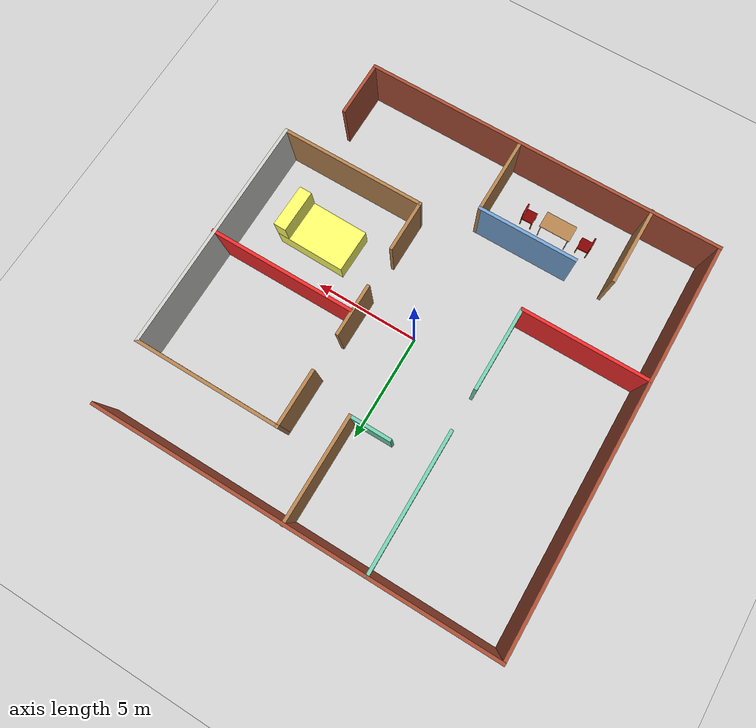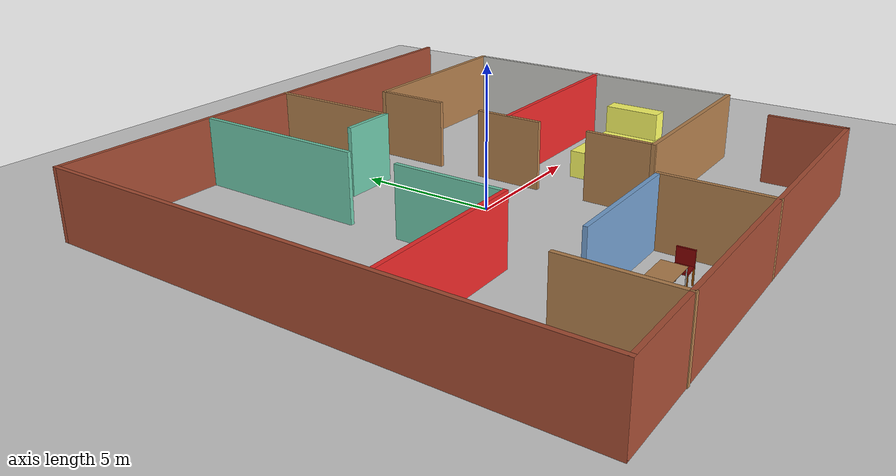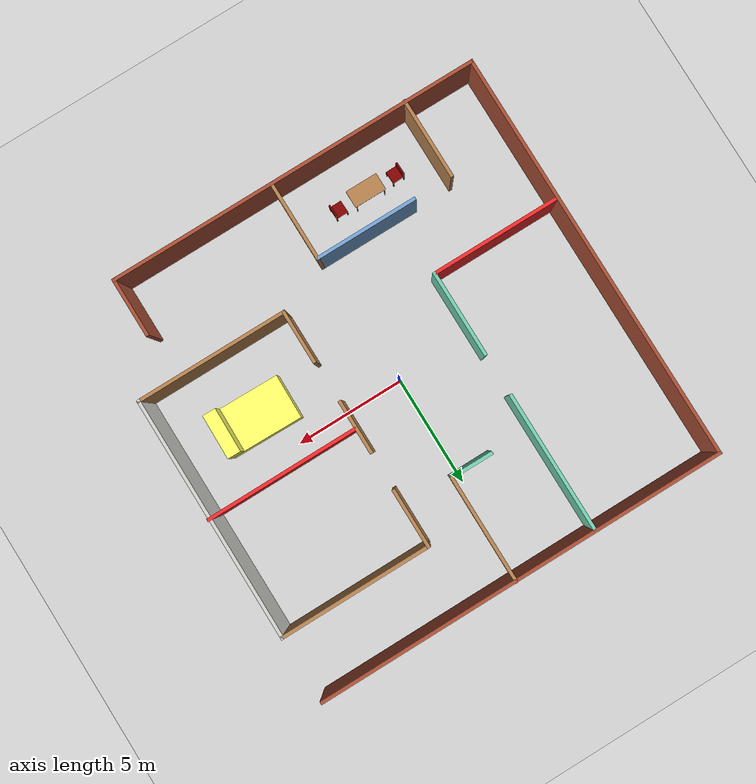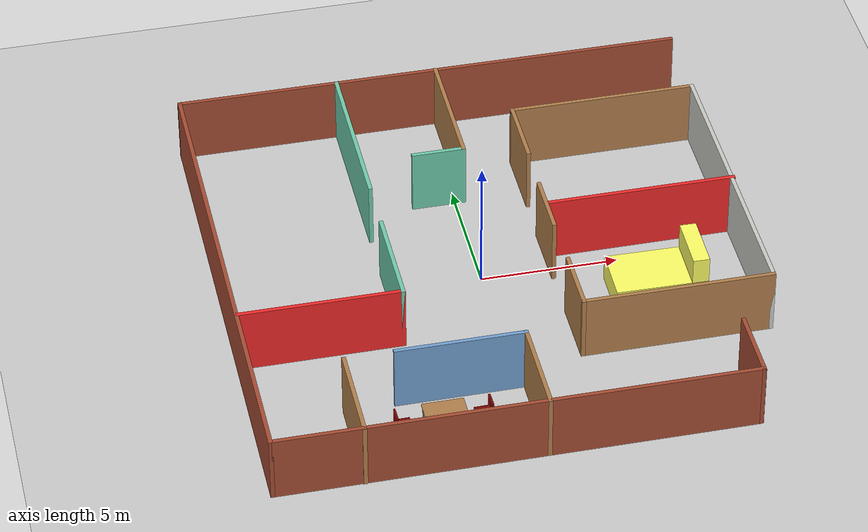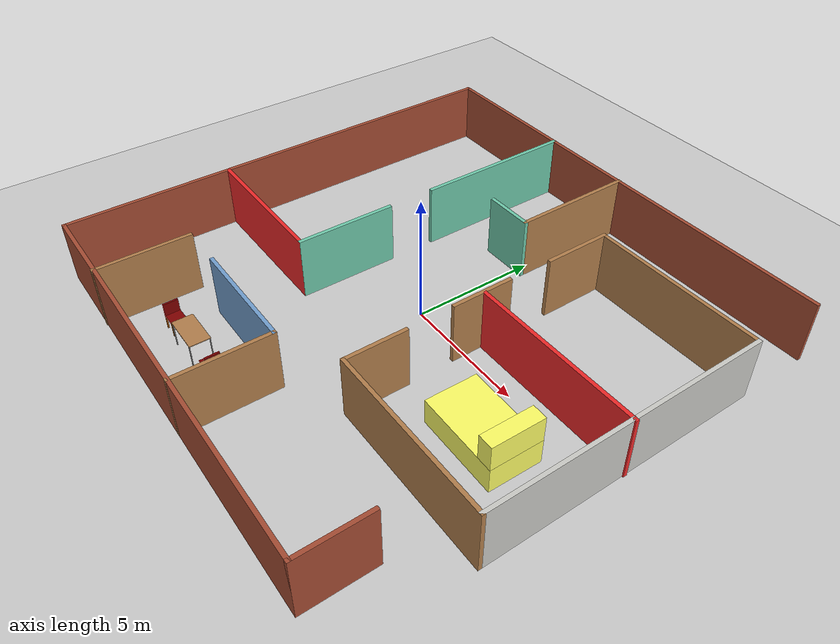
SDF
<sdf version="1.6">
 <world name="default">
  <model name="ground_plane">
   <static>1</static>
   <link name="link">
    <collision name="collision">
     <geometry><plane><normal>0 0 1</normal><size>100 100</size></plane></geometry>
     <surface>
      <contact><collide_bitmask>65535</collide_bitmask></contact>
      <friction><ode><mu>100</mu><mu2>50</mu2></ode></friction>
     </surface>
    </collision>
    <visual name="visual">
     <cast_shadows>0</cast_shadows>
     <geometry><plane><normal>0 0 1</normal><size>100 100</size></plane></geometry>
     <material>
      <script><uri>file://media/materials/scripts/gazebo.material</uri><name>Gazebo/Grey</name></script>
     </material>
    </visual>
   </link>
  </model>
  <model name="building_submit2">
   <pose>0.05273 -0.090017 0 0 -0 0</pose>
   <link name="Wall_13">
    <collision name="Wall_13_Collision">
     <geometry><box><size>19 0.15 2.5</size></box></geometry>
     <pose>0 0 1.25 0 -0 0</pose>
    </collision>
    <visual name="Wall_13_Visual">
     <pose>0 0 1.25 0 -0 0</pose>
     <geometry><box><size>19 0.15 2.5</size></box></geometry>
     <material>
      <script><uri>file://media/materials/scripts/gazebo.material</uri><name>Gazebo/Bricks</name></script>
      <ambient>1 1 1 1</ambient>
     </material>
     <meta><layer>0</layer></meta>
    </visual>
    <pose>-9.41583 0.005472 0 0 -0 -1.5708</pose>
   </link>
   <link name="Wall_15">
    <collision name="Wall_15_Collision">
     <geometry><box><size>18.9075 0.15 2.5</size></box></geometry>
     <pose>0 0 1.25 0 -0 0</pose>
    </collision>
    <visual name="Wall_15_Visual">
     <pose>0 0 1.25 0 -0 0</pose>
     <geometry><box><size>18.9075 0.15 2.5</size></box></geometry>
     <material>
      <script><uri>file://media/materials/scripts/gazebo.material</uri><name>Gazebo/Bricks</name></script>
      <ambient>1 1 1 1</ambient>
     </material>
     <meta><layer>0</layer></meta>
    </visual>
    <pose>-0.037088 9.43047 0 0 -0 0</pose>
   </link>
   <link name="Wall_21">
    <collision name="Wall_21_Collision">
     <geometry><box><size>7 0.15 2.5</size></box></geometry>
     <pose>0 0 1.25 0 -0 0</pose>
    </collision>
    <visual name="Wall_21_Visual">
     <pose>0 0 1.25 0 -0 0</pose>
     <geometry><box><size>7 0.15 2.5</size></box></geometry>
     <material>
      <script><uri>file://media/materials/scripts/gazebo.material</uri><name>Gazebo/Wood</name></script>
      <ambient>1 1 1 1</ambient>
     </material>
     <meta><layer>0</layer></meta>
    </visual>
    <pose>5.94123 6.42349 0 0 -0 3.14159</pose>
   </link>
   <link name="Wall_23">
    <collision name="Wall_23_Collision">
     <geometry><box><size>7 0.15 2.5</size></box></geometry>
     <pose>0 0 1.25 0 -0 0</pose>
    </collision>
    <visual name="Wall_23_Visual">
     <pose>0 0 1.25 0 -0 0</pose>
     <geometry><box><size>7 0.15 2.5</size></box></geometry>
     <material>
      <script><uri>file://media/materials/scripts/gazebo.material</uri><name>Gazebo/Wood</name></script>
      <ambient>1 1 1 1</ambient>
     </material>
     <meta><layer>0</layer></meta>
    </visual>
    <pose>5.94123 -4.67651 0 0 -0 0</pose>
   </link>
   <link name="Wall_25">
    <collision name="Wall_25_Collision">
     <geometry><box><size>7 0.15 2.5</size></box></geometry>
     <pose>0 0 1.25 0 -0 0</pose>
    </collision>
    <visual name="Wall_25_Visual">
     <pose>0 0 1.25 0 -0 0</pose>
     <geometry><box><size>7 0.15 2.5</size></box></geometry>
     <material>
      <script><uri>file://media/materials/scripts/gazebo.material</uri><name>Gazebo/Grey</name></script>
      <ambient>0.937255 0.160784 0.160784 1</ambient>
     </material>
     <meta><layer>0</layer></meta>
    </visual>
    <pose>5.99083 0.872147 0 0 -0 0</pose>
   </link>
   <link name="Wall_27">
    <collision name="Wall_27_Collision">
     <geometry><box><size>11.25 0.15 2.5</size></box></geometry>
     <pose>0 0 1.25 0 -0 0</pose>
    </collision>
    <visual name="Wall_27_Visual">
     <pose>0 0 1.25 0 -0 0</pose>
     <geometry><box><size>11.25 0.15 2.5</size></box></geometry>
     <material>
      <script><uri>file://media/materials/scripts/gazebo.material</uri><name>Gazebo/CeilingTiled</name></script>
      <ambient>1 1 1 1</ambient>
     </material>
     <meta><layer>0</layer></meta>
    </visual>
    <pose>9.36623 0.873493 0 0 -0 -1.5708</pose>
   </link>
   <link name="Wall_36">
    <collision name="Wall_36_Collision">
     <geometry><box><size>17.25 0.15 2.5</size></box></geometry>
     <pose>0 0 1.25 0 -0 0</pose>
    </collision>
    <visual name="Wall_36_Visual">
     <pose>0 0 1.25 0 -0 0</pose>
     <geometry><box><size>17.25 0.15 2.5</size></box></geometry>
     <material>
      <script><uri>file://media/materials/scripts/gazebo.material</uri><name>Gazebo/Bricks</name></script>
      <ambient>1 1 1 1</ambient>
     </material>
     <meta><layer>0</layer></meta>
    </visual>
    <pose>-0.865827 -9.41953 0 0 -0 0</pose>
   </link>
   <link name="Wall_37">
    <collision name="Wall_37_Collision">
     <geometry><box><size>2.75 0.15 2.5</size></box></geometry>
     <pose>0 0 1.25 0 -0 0</pose>
    </collision>
    <visual name="Wall_37_Visual">
     <pose>0 0 1.25 0 -0 0</pose>
     <geometry><box><size>2.75 0.15 2.5</size></box></geometry>
     <material>
      <script><uri>file://media/materials/scripts/gazebo.material</uri><name>Gazebo/Bricks</name></script>
      <ambient>1 1 1 1</ambient>
     </material>
     <meta><layer>0</layer></meta>
    </visual>
    <pose>7.68417 -8.11953 0 0 -0 1.5708</pose>
   </link>
   <link name="Wall_39">
    <collision name="Wall_39_Collision">
     <geometry><box><size>2.75 0.15 2.5</size></box></geometry>
     <pose>0 0 1.25 0 -0 0</pose>
    </collision>
    <visual name="Wall_39_Visual">
     <pose>0 0 1.25 0 -0 0</pose>
     <geometry><box><size>2.75 0.15 2.5</size></box></geometry>
     <material>
      <script><uri>file://media/materials/scripts/gazebo.material</uri><name>Gazebo/Wood</name></script>
      <ambient>1 1 1 1</ambient>
     </material>
     <meta><layer>0</layer></meta>
    </visual>
    <pose>2.51623 5.12349 0 0 -0 -1.5708</pose>
   </link>
   <link name="Wall_41">
    <collision name="Wall_41_Collision">
     <geometry><box><size>2.5 0.15 2.5</size></box></geometry>
     <pose>0 0 1.25 0 -0 0</pose>
    </collision>
    <visual name="Wall_41_Visual">
     <pose>0 0 1.25 0 -0 0</pose>
     <geometry><box><size>2.5 0.15 2.5</size></box></geometry>
     <material>
      <script><uri>file://media/materials/scripts/gazebo.material</uri><name>Gazebo/Wood</name></script>
      <ambient>1 1 1 1</ambient>
     </material>
     <meta><layer>0</layer></meta>
    </visual>
    <pose>2.4831 0.814696 0 0 -0 -1.5708</pose>
   </link>
   <link name="Wall_43">
    <collision name="Wall_43_Collision">
     <geometry><box><size>2.5 0.15 2.5</size></box></geometry>
     <pose>0 0 1.25 0 -0 0</pose>
    </collision>
    <visual name="Wall_43_Visual">
     <pose>0 0 1.25 0 -0 0</pose>
     <geometry><box><size>2.5 0.15 2.5</size></box></geometry>
     <material>
      <script><uri>file://media/materials/scripts/gazebo.material</uri><name>Gazebo/Wood</name></script>
      <ambient>1 1 1 1</ambient>
     </material>
     <meta><layer>0</layer></meta>
    </visual>
    <pose>2.51623 -3.50151 0 0 -0 1.5708</pose>
   </link>
   <link name="Wall_46">
    <collision name="Wall_46_Collision">
     <geometry><box><size>6 0.15 2.5</size></box></geometry>
     <pose>0 0 1.25 0 -0 0</pose>
    </collision>
    <visual name="Wall_46_Visual">
     <pose>0 0 1.25 0 -0 0</pose>
     <geometry><box><size>6 0.15 2.5</size></box></geometry>
     <material>
      <script><uri>file://media/materials/scripts/gazebo.material</uri><name>Gazebo/Grey</name></script>
      <ambient>0.937255 0.160784 0.160784 1</ambient>
     </material>
     <meta><layer>0</layer></meta>
    </visual>
    <pose>-6.43819 -2.78383 0 0 -0 3.14159</pose>
   </link>
   <link name="Wall_48">
    <collision name="Wall_48_Collision">
     <geometry><box><size>3.75 0.15 2.5</size></box></geometry>
     <pose>0 0 1.25 0 -0 0</pose>
    </collision>
    <visual name="Wall_48_Visual">
     <pose>0 0 1.25 0 -0 0</pose>
     <geometry><box><size>3.75 0.15 2.5</size></box></geometry>
     <material>
      <script><uri>file://media/materials/scripts/gazebo.material</uri><name>Gazebo/Wood</name></script>
      <ambient>1 1 1 1</ambient>
     </material>
     <meta><layer>0</layer></meta>
    </visual>
    <pose>-6.2174 -7.64721 0 0 -0 1.5708</pose>
   </link>
   <link name="Wall_50">
    <collision name="Wall_50_Collision">
     <geometry><box><size>3.75 0.15 2.5</size></box></geometry>
     <pose>0 0 1.25 0 -0 0</pose>
    </collision>
    <visual name="Wall_50_Visual">
     <pose>0 0 1.25 0 -0 0</pose>
     <geometry><box><size>3.75 0.15 2.5</size></box></geometry>
     <material>
      <script><uri>file://media/materials/scripts/gazebo.material</uri><name>Gazebo/Wood</name></script>
      <ambient>1 1 1 1</ambient>
     </material>
     <meta><layer>0</layer></meta>
    </visual>
    <pose>0.195698 -7.62076 0 0 -0 -1.5708</pose>
   </link>
   <link name="Wall_52">
    <collision name="Wall_52_Collision">
     <geometry><box><size>4.75 0.15 2.5</size></box></geometry>
     <pose>0 0 1.25 0 -0 0</pose>
    </collision>
    <visual name="Wall_52_Visual">
     <pose>0 0 1.25 0 -0 0</pose>
     <geometry><box><size>4.75 0.15 2.5</size></box></geometry>
     <material>
      <script><uri>file://media/materials/scripts/gazebo.material</uri><name>Gazebo/Grey</name></script>
      <ambient>0.447059 0.623529 0.811765 1</ambient>
     </material>
     <meta><layer>0</layer></meta>
    </visual>
    <pose>-2.1043 -5.82076 0 0 -0 3.14159</pose>
   </link>
   <link name="Wall_55">
    <collision name="Wall_55_Collision">
     <geometry><box><size>5 0.15 2.5</size></box></geometry>
     <pose>0 0 1.25 0 -0 0</pose>
    </collision>
    <visual name="Wall_55_Visual">
     <pose>0 0 1.25 0 -0 0</pose>
     <geometry><box><size>5 0.15 2.5</size></box></geometry>
     <material>
      <script><uri>file://media/materials/scripts/gazebo.material</uri><name>Gazebo/Wood</name></script>
      <ambient>1 1 1 1</ambient>
     </material>
     <meta><layer>0</layer></meta>
    </visual>
    <pose>0.261068 7.02221 0 0 -0 -1.5708</pose>
   </link>
   <link name="Wall_56">
    <collision name="Wall_56_Collision">
     <geometry><box><size>2 0.15 2.5</size></box></geometry>
     <pose>0 0 1.25 0 -0 0</pose>
    </collision>
    <visual name="Wall_56_Visual">
     <pose>0 0 1.25 0 -0 0</pose>
     <geometry><box><size>2 0.15 2.5</size></box></geometry>
     <material>
      <script><uri>file://media/materials/scripts/gazebo.material</uri><name>Gazebo/Grey</name></script>
      <ambient>0.435294 0.796078 0.67451 1</ambient>
     </material>
     <meta><layer>0</layer></meta>
    </visual>
    <pose>-0.663932 4.59721 0 0 -0 3.14159</pose>
   </link>
   <link name="Wall_58">
    <collision name="Wall_58_Collision">
     <geometry><box><size>6.5 0.15 2.5</size></box></geometry>
     <pose>0 0 1.25 0 -0 0</pose>
    </collision>
    <visual name="Wall_58_Visual">
     <pose>0 0 1.25 0 -0 0</pose>
     <geometry><box><size>6.5 0.15 2.5</size></box></geometry>
     <material>
      <script><uri>file://media/materials/scripts/gazebo.material</uri><name>Gazebo/Grey</name></script>
      <ambient>0.435294 0.796078 0.67451 1</ambient>
     </material>
     <meta><layer>0</layer></meta>
    </visual>
    <pose>-3.51319 6.23718 0 0 -0 -1.5708</pose>
   </link>
   <link name="Wall_60">
    <collision name="Wall_60_Collision">
     <geometry><box><size>4 0.15 2.5</size></box></geometry>
     <pose>0 0 1.25 0 -0 0</pose>
    </collision>
    <visual name="Wall_60_Visual">
     <pose>0 0 1.25 0 -0 0</pose>
     <geometry><box><size>4 0.15 2.5</size></box></geometry>
     <material>
      <script><uri>file://media/materials/scripts/gazebo.material</uri><name>Gazebo/Grey</name></script>
      <ambient>0.435294 0.796078 0.67451 1</ambient>
     </material>
     <meta><layer>0</layer></meta>
    </visual>
    <pose>-3.51319 -0.858835 0 0 -0 1.5708</pose>
   </link>
   <static>1</static>
  </model>
  <model name="chair_7">
   <link name="link_0">
    <inertial>
     <mass>1</mass>
     <inertia>
      <ixx>0.166667</ixx>
      <ixy>0</ixy>
      <ixz>0</ixz>
      <iyy>0.166667</iyy>
      <iyz>0</iyz>
      <izz>0.166667</izz>
     </inertia>
    </inertial>
    <pose>0.000435 0.041667 0.148333 0 -0 0</pose>
    <visual name="visual">
     <geometry><box><size>0.57 0.57 0.07</size></box></geometry>
     <material>
      <lighting>1</lighting>
      <script><uri>file://media/materials/scripts/gazebo.material</uri><name>Gazebo/Grey</name></script>
      <shader type="vertex"><normal_map>__default__</normal_map></shader>
      <ambient>0.502 0 0 1</ambient>
      <diffuse>0.7 0.7 0.7 1</diffuse>
      <specular>0.01 0.01 0.01 1</specular>
      <emissive>0 0 0 1</emissive>
     </material>
    </visual>
    <collision name="collision">
     <geometry><box><size>0.57 0.57 0.07</size></box></geometry>
     <surface>
      <friction>
       <ode><mu>1</mu><mu2>1</mu2><fdir1>0 0 0</fdir1><slip1>0</slip1><slip2>0</slip2></ode>
       <torsional>
        <coefficient>1</coefficient>
        <patch_radius>0</patch_radius>
        <surface_radius>0</surface_radius>
        <use_patch_radius>1</use_patch_radius>
        <ode><slip>0</slip></ode>
       </torsional>
      </friction>
      <bounce><restitution_coefficient>0</restitution_coefficient><threshold>1e+06</threshold></bounce>
      <contact>
       <collide_without_contact>0</collide_without_contact>
       <collide_without_contact_bitmask>1</collide_without_contact_bitmask>
       <collide_bitmask>1</collide_bitmask>
       <ode>
        <soft_cfm>0</soft_cfm>
        <soft_erp>0.2</soft_erp>
        <kp>1e+13</kp>
        <kd>1</kd>
        <max_vel>0.01</max_vel>
        <min_depth>0</min_depth>
       </ode>
       <bullet>
        <split_impulse>1</split_impulse>
        <split_impulse_penetration_threshold>-0.01</split_impulse_penetration_threshold>
        <soft_cfm>0</soft_cfm>
        <soft_erp>0.2</soft_erp>
        <kp>1e+13</kp>
        <kd>1</kd>
       </bullet>
      </contact>
     </surface>
    </collision>
   </link>
   <link name="link_1">
    <inertial>
     <mass>1</mass>
     <inertia>
      <ixx>0.166667</ixx>
      <ixy>0</ixy>
      <ixz>0</ixz>
      <iyy>0.166667</iyy>
      <iyz>0</iyz>
      <izz>0.166667</izz>
     </inertia>
    </inertial>
    <pose>0.000435 -0.208333 0.398333 0 -0 0</pose>
    <visual name="visual">
     <geometry><box><size>0.57 0.07 0.57</size></box></geometry>
     <material>
      <lighting>1</lighting>
      <script><uri>file://media/materials/scripts/gazebo.material</uri><name>Gazebo/Grey</name></script>
      <shader type="vertex"><normal_map>__default__</normal_map></shader>
      <ambient>0.502 0 0 1</ambient>
      <diffuse>0.7 0.7 0.7 1</diffuse>
      <specular>0.01 0.01 0.01 1</specular>
      <emissive>0 0 0 1</emissive>
     </material>
    </visual>
    <collision name="collision">
     <geometry><box><size>0.57 0.07 0.57</size></box></geometry>
     <surface>
      <friction>
       <ode><mu>1</mu><mu2>1</mu2><fdir1>0 0 0</fdir1><slip1>0</slip1><slip2>0</slip2></ode>
       <torsional>
        <coefficient>1</coefficient>
        <patch_radius>0</patch_radius>
        <surface_radius>0</surface_radius>
        <use_patch_radius>1</use_patch_radius>
        <ode><slip>0</slip></ode>
       </torsional>
      </friction>
      <bounce><restitution_coefficient>0</restitution_coefficient><threshold>1e+06</threshold></bounce>
      <contact>
       <collide_without_contact>0</collide_without_contact>
       <collide_without_contact_bitmask>1</collide_without_contact_bitmask>
       <collide_bitmask>1</collide_bitmask>
       <ode>
        <soft_cfm>0</soft_cfm>
        <soft_erp>0.2</soft_erp>
        <kp>1e+13</kp>
        <kd>1</kd>
        <max_vel>0.01</max_vel>
        <min_depth>0</min_depth>
       </ode>
       <bullet>
        <split_impulse>1</split_impulse>
        <split_impulse_penetration_threshold>-0.01</split_impulse_penetration_threshold>
        <soft_cfm>0</soft_cfm>
        <soft_erp>0.2</soft_erp>
        <kp>1e+13</kp>
        <kd>1</kd>
       </bullet>
      </contact>
     </surface>
    </collision>
   </link>
   <link name="link_2">
    <inertial>
     <mass>1</mass>
     <inertia>
      <ixx>0.166667</ixx>
      <ixy>0</ixy>
      <ixz>0</ixz>
      <iyy>0.166667</iyy>
      <iyz>0</iyz>
      <izz>0.166667</izz>
     </inertia>
    </inertial>
    <pose>0.257825 -0.218333 -0.136667 0 -0 0</pose>
    <visual name="visual">
     <geometry><box><size>0.05 0.05 0.57</size></box></geometry>
     <material>
      <lighting>1</lighting>
      <script><uri>file://media/materials/scripts/gazebo.material</uri><name>Gazebo/Grey</name></script>
      <shader type="vertex"><normal_map>__default__</normal_map></shader>
      <ambient>0.588 0.294 0 1</ambient>
      <diffuse>0.7 0.7 0.7 1</diffuse>
      <specular>0.01 0.01 0.01 1</specular>
      <emissive>0 0 0 1</emissive>
     </material>
    </visual>
    <collision name="collision">
     <geometry><box><size>0.05 0.05 0.57</size></box></geometry>
     <surface>
      <friction>
       <ode><mu>1</mu><mu2>1</mu2><fdir1>0 0 0</fdir1><slip1>0</slip1><slip2>0</slip2></ode>
       <torsional>
        <coefficient>1</coefficient>
        <patch_radius>0</patch_radius>
        <surface_radius>0</surface_radius>
        <use_patch_radius>1</use_patch_radius>
        <ode><slip>0</slip></ode>
       </torsional>
      </friction>
      <bounce><restitution_coefficient>0</restitution_coefficient><threshold>1e+06</threshold></bounce>
      <contact>
       <collide_without_contact>0</collide_without_contact>
       <collide_without_contact_bitmask>1</collide_without_contact_bitmask>
       <collide_bitmask>1</collide_bitmask>
       <ode>
        <soft_cfm>0</soft_cfm>
        <soft_erp>0.2</soft_erp>
        <kp>1e+13</kp>
        <kd>1</kd>
        <max_vel>0.01</max_vel>
        <min_depth>0</min_depth>
       </ode>
       <bullet>
        <split_impulse>1</split_impulse>
        <split_impulse_penetration_threshold>-0.01</split_impulse_penetration_threshold>
        <soft_cfm>0</soft_cfm>
        <soft_erp>0.2</soft_erp>
        <kp>1e+13</kp>
        <kd>1</kd>
       </bullet>
      </contact>
     </surface>
    </collision>
   </link>
   <link name="link_2_clone">
    <inertial>
     <mass>1</mass>
     <inertia>
      <ixx>0.166667</ixx>
      <ixy>0</ixy>
      <ixz>0</ixz>
      <iyy>0.166667</iyy>
      <iyz>0</iyz>
      <izz>0.166667</izz>
     </inertia>
    </inertial>
    <pose>-0.259565 -0.218333 -0.136667 0 -0 0</pose>
    <visual name="visual">
     <geometry><box><size>0.05 0.05 0.57</size></box></geometry>
     <material>
      <lighting>1</lighting>
      <script><uri>file://media/materials/scripts/gazebo.material</uri><name>Gazebo/Grey</name></script>
      <shader type="vertex"><normal_map>__default__</normal_map></shader>
      <ambient>0.588 0.294 0 1</ambient>
      <diffuse>0.7 0.7 0.7 1</diffuse>
      <specular>0.01 0.01 0.01 1</specular>
      <emissive>0 0 0 1</emissive>
     </material>
    </visual>
    <collision name="collision">
     <geometry><box><size>0.05 0.05 0.57</size></box></geometry>
     <surface>
      <friction>
       <ode><mu>1</mu><mu2>1</mu2><fdir1>0 0 0</fdir1><slip1>0</slip1><slip2>0</slip2></ode>
       <torsional>
        <coefficient>1</coefficient>
        <patch_radius>0</patch_radius>
        <surface_radius>0</surface_radius>
        <use_patch_radius>1</use_patch_radius>
        <ode><slip>0</slip></ode>
       </torsional>
      </friction>
      <bounce><restitution_coefficient>0</restitution_coefficient><threshold>1e+06</threshold></bounce>
      <contact>
       <collide_without_contact>0</collide_without_contact>
       <collide_without_contact_bitmask>1</collide_without_contact_bitmask>
       <collide_bitmask>1</collide_bitmask>
       <ode>
        <soft_cfm>0</soft_cfm>
        <soft_erp>0.2</soft_erp>
        <kp>1e+13</kp>
        <kd>1</kd>
        <max_vel>0.01</max_vel>
        <min_depth>0</min_depth>
       </ode>
       <bullet>
        <split_impulse>1</split_impulse>
        <split_impulse_penetration_threshold>-0.01</split_impulse_penetration_threshold>
        <soft_cfm>0</soft_cfm>
        <soft_erp>0.2</soft_erp>
        <kp>1e+13</kp>
        <kd>1</kd>
       </bullet>
      </contact>
     </surface>
    </collision>
   </link>
   <link name="link_2_clone_clone">
    <inertial>
     <mass>1</mass>
     <inertia>
      <ixx>0.166667</ixx>
      <ixy>0</ixy>
      <ixz>0</ixz>
      <iyy>0.166667</iyy>
      <iyz>0</iyz>
      <izz>0.166667</izz>
     </inertia>
    </inertial>
    <pose>-0.259565 0.301667 -0.136667 0 -0 0</pose>
    <visual name="visual">
     <geometry><box><size>0.05 0.05 0.57</size></box></geometry>
     <material>
      <lighting>1</lighting>
      <script><uri>file://media/materials/scripts/gazebo.material</uri><name>Gazebo/Grey</name></script>
      <shader type="vertex"><normal_map>__default__</normal_map></shader>
      <ambient>0.588 0.294 0 1</ambient>
      <diffuse>0.7 0.7 0.7 1</diffuse>
      <specular>0.01 0.01 0.01 1</specular>
      <emissive>0 0 0 1</emissive>
     </material>
    </visual>
    <collision name="collision">
     <geometry><box><size>0.05 0.05 0.57</size></box></geometry>
     <surface>
      <friction>
       <ode><mu>1</mu><mu2>1</mu2><fdir1>0 0 0</fdir1><slip1>0</slip1><slip2>0</slip2></ode>
       <torsional>
        <coefficient>1</coefficient>
        <patch_radius>0</patch_radius>
        <surface_radius>0</surface_radius>
        <use_patch_radius>1</use_patch_radius>
        <ode><slip>0</slip></ode>
       </torsional>
      </friction>
      <bounce><restitution_coefficient>0</restitution_coefficient><threshold>1e+06</threshold></bounce>
      <contact>
       <collide_without_contact>0</collide_without_contact>
       <collide_without_contact_bitmask>1</collide_without_contact_bitmask>
       <collide_bitmask>1</collide_bitmask>
       <ode>
        <soft_cfm>0</soft_cfm>
        <soft_erp>0.2</soft_erp>
        <kp>1e+13</kp>
        <kd>1</kd>
        <max_vel>0.01</max_vel>
        <min_depth>0</min_depth>
       </ode>
       <bullet>
        <split_impulse>1</split_impulse>
        <split_impulse_penetration_threshold>-0.01</split_impulse_penetration_threshold>
        <soft_cfm>0</soft_cfm>
        <soft_erp>0.2</soft_erp>
        <kp>1e+13</kp>
        <kd>1</kd>
       </bullet>
      </contact>
     </surface>
    </collision>
   </link>
   <link name="link_2_clone_clone_0">
    <inertial>
     <mass>1</mass>
     <inertia>
      <ixx>0.166667</ixx>
      <ixy>0</ixy>
      <ixz>0</ixz>
      <iyy>0.166667</iyy>
      <iyz>0</iyz>
      <izz>0.166667</izz>
     </inertia>
    </inertial>
    <pose>0.260435 0.301667 -0.136667 0 -0 0</pose>
    <visual name="visual">
     <geometry><box><size>0.05 0.05 0.57</size></box></geometry>
     <material>
      <lighting>1</lighting>
      <script><uri>file://media/materials/scripts/gazebo.material</uri><name>Gazebo/Grey</name></script>
      <shader type="vertex"><normal_map>__default__</normal_map></shader>
      <ambient>0.588 0.294 0 1</ambient>
      <diffuse>0.7 0.7 0.7 1</diffuse>
      <specular>0.01 0.01 0.01 1</specular>
      <emissive>0 0 0 1</emissive>
     </material>
    </visual>
    <collision name="collision">
     <geometry><box><size>0.05 0.05 0.57</size></box></geometry>
     <surface>
      <friction>
       <ode><mu>1</mu><mu2>1</mu2><fdir1>0 0 0</fdir1><slip1>0</slip1><slip2>0</slip2></ode>
       <torsional>
        <coefficient>1</coefficient>
        <patch_radius>0</patch_radius>
        <surface_radius>0</surface_radius>
        <use_patch_radius>1</use_patch_radius>
        <ode><slip>0</slip></ode>
       </torsional>
      </friction>
      <bounce><restitution_coefficient>0</restitution_coefficient><threshold>1e+06</threshold></bounce>
      <contact>
       <collide_without_contact>0</collide_without_contact>
       <collide_without_contact_bitmask>1</collide_without_contact_bitmask>
       <collide_bitmask>1</collide_bitmask>
       <ode>
        <soft_cfm>0</soft_cfm>
        <soft_erp>0.2</soft_erp>
        <kp>1e+13</kp>
        <kd>1</kd>
        <max_vel>0.01</max_vel>
        <min_depth>0</min_depth>
       </ode>
       <bullet>
        <split_impulse>1</split_impulse>
        <split_impulse_penetration_threshold>-0.01</split_impulse_penetration_threshold>
        <soft_cfm>0</soft_cfm>
        <soft_erp>0.2</soft_erp>
        <kp>1e+13</kp>
        <kd>1</kd>
       </bullet>
      </contact>
     </surface>
    </collision>
   </link>
   <joint name="link_0_JOINT_0" type="fixed">
    <parent>link_0</parent>
    <child>link_1</child>
    <physics>
     <ode><limit><cfm>0</cfm><erp>0.2</erp></limit><suspension><cfm>0</cfm><erp>0.2</erp></suspension></ode>
    </physics>
   </joint>
   <joint name="link_0_JOINT_4" type="fixed">
    <parent>link_0</parent>
    <child>link_2</child>
    <physics>
     <ode><limit><cfm>0</cfm><erp>0.2</erp></limit><suspension><cfm>0</cfm><erp>0.2</erp></suspension></ode>
    </physics>
   </joint>
   <joint name="link_0_JOINT_5" type="fixed">
    <parent>link_0</parent>
    <child>link_2_clone</child>
    <physics>
     <ode><limit><cfm>0</cfm><erp>0.2</erp></limit><suspension><cfm>0</cfm><erp>0.2</erp></suspension></ode>
    </physics>
   </joint>
   <joint name="link_0_JOINT_6" type="fixed">
    <parent>link_0</parent>
    <child>link_2_clone_clone_0</child>
    <physics>
     <ode><limit><cfm>0</cfm><erp>0.2</erp></limit><suspension><cfm>0</cfm><erp>0.2</erp></suspension></ode>
    </physics>
   </joint>
   <joint name="link_0_JOINT_7" type="fixed">
    <parent>link_0</parent>
    <child>link_2_clone_clone</child>
    <physics>
     <ode><limit><cfm>0</cfm><erp>0.2</erp></limit><suspension><cfm>0</cfm><erp>0.2</erp></suspension></ode>
    </physics>
   </joint>
   <static>0</static>
   <pose>-1.56478 -7.54986 0.421667 1e-06 2e-06 1.59927</pose>
  </model>
  <model name="chair_8">
   <link name="link_0">
    <inertial>
     <mass>1</mass>
     <inertia>
      <ixx>0.166667</ixx>
      <ixy>0</ixy>
      <ixz>0</ixz>
      <iyy>0.166667</iyy>
      <iyz>0</iyz>
      <izz>0.166667</izz>
     </inertia>
    </inertial>
    <pose>0.000435 0.041667 0.148333 0 -0 0</pose>
    <visual name="visual">
     <geometry><box><size>0.57 0.57 0.07</size></box></geometry>
     <material>
      <lighting>1</lighting>
      <script><uri>file://media/materials/scripts/gazebo.material</uri><name>Gazebo/Grey</name></script>
      <shader type="vertex"><normal_map>__default__</normal_map></shader>
      <ambient>0.502 0 0 1</ambient>
      <diffuse>0.7 0.7 0.7 1</diffuse>
      <specular>0.01 0.01 0.01 1</specular>
      <emissive>0 0 0 1</emissive>
     </material>
    </visual>
    <collision name="collision">
     <geometry><box><size>0.57 0.57 0.07</size></box></geometry>
     <surface>
      <friction>
       <ode><mu>1</mu><mu2>1</mu2><fdir1>0 0 0</fdir1><slip1>0</slip1><slip2>0</slip2></ode>
       <torsional>
        <coefficient>1</coefficient>
        <patch_radius>0</patch_radius>
        <surface_radius>0</surface_radius>
        <use_patch_radius>1</use_patch_radius>
        <ode><slip>0</slip></ode>
       </torsional>
      </friction>
      <bounce><restitution_coefficient>0</restitution_coefficient><threshold>1e+06</threshold></bounce>
      <contact>
       <collide_without_contact>0</collide_without_contact>
       <collide_without_contact_bitmask>1</collide_without_contact_bitmask>
       <collide_bitmask>1</collide_bitmask>
       <ode>
        <soft_cfm>0</soft_cfm>
        <soft_erp>0.2</soft_erp>
        <kp>1e+13</kp>
        <kd>1</kd>
        <max_vel>0.01</max_vel>
        <min_depth>0</min_depth>
       </ode>
       <bullet>
        <split_impulse>1</split_impulse>
        <split_impulse_penetration_threshold>-0.01</split_impulse_penetration_threshold>
        <soft_cfm>0</soft_cfm>
        <soft_erp>0.2</soft_erp>
        <kp>1e+13</kp>
        <kd>1</kd>
       </bullet>
      </contact>
     </surface>
    </collision>
   </link>
   <link name="link_1">
    <inertial>
     <mass>1</mass>
     <inertia>
      <ixx>0.166667</ixx>
      <ixy>0</ixy>
      <ixz>0</ixz>
      <iyy>0.166667</iyy>
      <iyz>0</iyz>
      <izz>0.166667</izz>
     </inertia>
    </inertial>
    <pose>0.000435 -0.208333 0.398333 0 -0 0</pose>
    <visual name="visual">
     <geometry><box><size>0.57 0.07 0.57</size></box></geometry>
     <material>
      <lighting>1</lighting>
      <script><uri>file://media/materials/scripts/gazebo.material</uri><name>Gazebo/Grey</name></script>
      <shader type="vertex"><normal_map>__default__</normal_map></shader>
      <ambient>0.502 0 0 1</ambient>
      <diffuse>0.7 0.7 0.7 1</diffuse>
      <specular>0.01 0.01 0.01 1</specular>
      <emissive>0 0 0 1</emissive>
     </material>
    </visual>
    <collision name="collision">
     <geometry><box><size>0.57 0.07 0.57</size></box></geometry>
     <surface>
      <friction>
       <ode><mu>1</mu><mu2>1</mu2><fdir1>0 0 0</fdir1><slip1>0</slip1><slip2>0</slip2></ode>
       <torsional>
        <coefficient>1</coefficient>
        <patch_radius>0</patch_radius>
        <surface_radius>0</surface_radius>
        <use_patch_radius>1</use_patch_radius>
        <ode><slip>0</slip></ode>
       </torsional>
      </friction>
      <bounce><restitution_coefficient>0</restitution_coefficient><threshold>1e+06</threshold></bounce>
      <contact>
       <collide_without_contact>0</collide_without_contact>
       <collide_without_contact_bitmask>1</collide_without_contact_bitmask>
       <collide_bitmask>1</collide_bitmask>
       <ode>
        <soft_cfm>0</soft_cfm>
        <soft_erp>0.2</soft_erp>
        <kp>1e+13</kp>
        <kd>1</kd>
        <max_vel>0.01</max_vel>
        <min_depth>0</min_depth>
       </ode>
       <bullet>
        <split_impulse>1</split_impulse>
        <split_impulse_penetration_threshold>-0.01</split_impulse_penetration_threshold>
        <soft_cfm>0</soft_cfm>
        <soft_erp>0.2</soft_erp>
        <kp>1e+13</kp>
        <kd>1</kd>
       </bullet>
      </contact>
     </surface>
    </collision>
   </link>
   <link name="link_2">
    <inertial>
     <mass>1</mass>
     <inertia>
      <ixx>0.166667</ixx>
      <ixy>0</ixy>
      <ixz>0</ixz>
      <iyy>0.166667</iyy>
      <iyz>0</iyz>
      <izz>0.166667</izz>
     </inertia>
    </inertial>
    <pose>0.257825 -0.218333 -0.136667 0 -0 0</pose>
    <visual name="visual">
     <geometry><box><size>0.05 0.05 0.57</size></box></geometry>
     <material>
      <lighting>1</lighting>
      <script><uri>file://media/materials/scripts/gazebo.material</uri><name>Gazebo/Grey</name></script>
      <shader type="vertex"><normal_map>__default__</normal_map></shader>
      <ambient>0.588 0.294 0 1</ambient>
      <diffuse>0.7 0.7 0.7 1</diffuse>
      <specular>0.01 0.01 0.01 1</specular>
      <emissive>0 0 0 1</emissive>
     </material>
    </visual>
    <collision name="collision">
     <geometry><box><size>0.05 0.05 0.57</size></box></geometry>
     <surface>
      <friction>
       <ode><mu>1</mu><mu2>1</mu2><fdir1>0 0 0</fdir1><slip1>0</slip1><slip2>0</slip2></ode>
       <torsional>
        <coefficient>1</coefficient>
        <patch_radius>0</patch_radius>
        <surface_radius>0</surface_radius>
        <use_patch_radius>1</use_patch_radius>
        <ode><slip>0</slip></ode>
       </torsional>
      </friction>
      <bounce><restitution_coefficient>0</restitution_coefficient><threshold>1e+06</threshold></bounce>
      <contact>
       <collide_without_contact>0</collide_without_contact>
       <collide_without_contact_bitmask>1</collide_without_contact_bitmask>
       <collide_bitmask>1</collide_bitmask>
       <ode>
        <soft_cfm>0</soft_cfm>
        <soft_erp>0.2</soft_erp>
        <kp>1e+13</kp>
        <kd>1</kd>
        <max_vel>0.01</max_vel>
        <min_depth>0</min_depth>
       </ode>
       <bullet>
        <split_impulse>1</split_impulse>
        <split_impulse_penetration_threshold>-0.01</split_impulse_penetration_threshold>
        <soft_cfm>0</soft_cfm>
        <soft_erp>0.2</soft_erp>
        <kp>1e+13</kp>
        <kd>1</kd>
       </bullet>
      </contact>
     </surface>
    </collision>
   </link>
   <link name="link_2_clone">
    <inertial>
     <mass>1</mass>
     <inertia>
      <ixx>0.166667</ixx>
      <ixy>0</ixy>
      <ixz>0</ixz>
      <iyy>0.166667</iyy>
      <iyz>0</iyz>
      <izz>0.166667</izz>
     </inertia>
    </inertial>
    <pose>-0.259565 -0.218333 -0.136667 0 -0 0</pose>
    <visual name="visual">
     <geometry><box><size>0.05 0.05 0.57</size></box></geometry>
     <material>
      <lighting>1</lighting>
      <script><uri>file://media/materials/scripts/gazebo.material</uri><name>Gazebo/Grey</name></script>
      <shader type="vertex"><normal_map>__default__</normal_map></shader>
      <ambient>0.588 0.294 0 1</ambient>
      <diffuse>0.7 0.7 0.7 1</diffuse>
      <specular>0.01 0.01 0.01 1</specular>
      <emissive>0 0 0 1</emissive>
     </material>
    </visual>
    <collision name="collision">
     <geometry><box><size>0.05 0.05 0.57</size></box></geometry>
     <surface>
      <friction>
       <ode><mu>1</mu><mu2>1</mu2><fdir1>0 0 0</fdir1><slip1>0</slip1><slip2>0</slip2></ode>
       <torsional>
        <coefficient>1</coefficient>
        <patch_radius>0</patch_radius>
        <surface_radius>0</surface_radius>
        <use_patch_radius>1</use_patch_radius>
        <ode><slip>0</slip></ode>
       </torsional>
      </friction>
      <bounce><restitution_coefficient>0</restitution_coefficient><threshold>1e+06</threshold></bounce>
      <contact>
       <collide_without_contact>0</collide_without_contact>
       <collide_without_contact_bitmask>1</collide_without_contact_bitmask>
       <collide_bitmask>1</collide_bitmask>
       <ode>
        <soft_cfm>0</soft_cfm>
        <soft_erp>0.2</soft_erp>
        <kp>1e+13</kp>
        <kd>1</kd>
        <max_vel>0.01</max_vel>
        <min_depth>0</min_depth>
       </ode>
       <bullet>
        <split_impulse>1</split_impulse>
        <split_impulse_penetration_threshold>-0.01</split_impulse_penetration_threshold>
        <soft_cfm>0</soft_cfm>
        <soft_erp>0.2</soft_erp>
        <kp>1e+13</kp>
        <kd>1</kd>
       </bullet>
      </contact>
     </surface>
    </collision>
   </link>
   <link name="link_2_clone_clone">
    <inertial>
     <mass>1</mass>
     <inertia>
      <ixx>0.166667</ixx>
      <ixy>0</ixy>
      <ixz>0</ixz>
      <iyy>0.166667</iyy>
      <iyz>0</iyz>
      <izz>0.166667</izz>
     </inertia>
    </inertial>
    <pose>-0.259565 0.301667 -0.136667 0 -0 0</pose>
    <visual name="visual">
     <geometry><box><size>0.05 0.05 0.57</size></box></geometry>
     <material>
      <lighting>1</lighting>
      <script><uri>file://media/materials/scripts/gazebo.material</uri><name>Gazebo/Grey</name></script>
      <shader type="vertex"><normal_map>__default__</normal_map></shader>
      <ambient>0.588 0.294 0 1</ambient>
      <diffuse>0.7 0.7 0.7 1</diffuse>
      <specular>0.01 0.01 0.01 1</specular>
      <emissive>0 0 0 1</emissive>
     </material>
    </visual>
    <collision name="collision">
     <geometry><box><size>0.05 0.05 0.57</size></box></geometry>
     <surface>
      <friction>
       <ode><mu>1</mu><mu2>1</mu2><fdir1>0 0 0</fdir1><slip1>0</slip1><slip2>0</slip2></ode>
       <torsional>
        <coefficient>1</coefficient>
        <patch_radius>0</patch_radius>
        <surface_radius>0</surface_radius>
        <use_patch_radius>1</use_patch_radius>
        <ode><slip>0</slip></ode>
       </torsional>
      </friction>
      <bounce><restitution_coefficient>0</restitution_coefficient><threshold>1e+06</threshold></bounce>
      <contact>
       <collide_without_contact>0</collide_without_contact>
       <collide_without_contact_bitmask>1</collide_without_contact_bitmask>
       <collide_bitmask>1</collide_bitmask>
       <ode>
        <soft_cfm>0</soft_cfm>
        <soft_erp>0.2</soft_erp>
        <kp>1e+13</kp>
        <kd>1</kd>
        <max_vel>0.01</max_vel>
        <min_depth>0</min_depth>
       </ode>
       <bullet>
        <split_impulse>1</split_impulse>
        <split_impulse_penetration_threshold>-0.01</split_impulse_penetration_threshold>
        <soft_cfm>0</soft_cfm>
        <soft_erp>0.2</soft_erp>
        <kp>1e+13</kp>
        <kd>1</kd>
       </bullet>
      </contact>
     </surface>
    </collision>
   </link>
   <link name="link_2_clone_clone_0">
    <inertial>
     <mass>1</mass>
     <inertia>
      <ixx>0.166667</ixx>
      <ixy>0</ixy>
      <ixz>0</ixz>
      <iyy>0.166667</iyy>
      <iyz>0</iyz>
      <izz>0.166667</izz>
     </inertia>
    </inertial>
    <pose>0.260435 0.301667 -0.136667 0 -0 0</pose>
    <visual name="visual">
     <geometry><box><size>0.05 0.05 0.57</size></box></geometry>
     <material>
      <lighting>1</lighting>
      <script><uri>file://media/materials/scripts/gazebo.material</uri><name>Gazebo/Grey</name></script>
      <shader type="vertex"><normal_map>__default__</normal_map></shader>
      <ambient>0.588 0.294 0 1</ambient>
      <diffuse>0.7 0.7 0.7 1</diffuse>
      <specular>0.01 0.01 0.01 1</specular>
      <emissive>0 0 0 1</emissive>
     </material>
    </visual>
    <collision name="collision">
     <geometry><box><size>0.05 0.05 0.57</size></box></geometry>
     <surface>
      <friction>
       <ode><mu>1</mu><mu2>1</mu2><fdir1>0 0 0</fdir1><slip1>0</slip1><slip2>0</slip2></ode>
       <torsional>
        <coefficient>1</coefficient>
        <patch_radius>0</patch_radius>
        <surface_radius>0</surface_radius>
        <use_patch_radius>1</use_patch_radius>
        <ode><slip>0</slip></ode>
       </torsional>
      </friction>
      <bounce><restitution_coefficient>0</restitution_coefficient><threshold>1e+06</threshold></bounce>
      <contact>
       <collide_without_contact>0</collide_without_contact>
       <collide_without_contact_bitmask>1</collide_without_contact_bitmask>
       <collide_bitmask>1</collide_bitmask>
       <ode>
        <soft_cfm>0</soft_cfm>
        <soft_erp>0.2</soft_erp>
        <kp>1e+13</kp>
        <kd>1</kd>
        <max_vel>0.01</max_vel>
        <min_depth>0</min_depth>
       </ode>
       <bullet>
        <split_impulse>1</split_impulse>
        <split_impulse_penetration_threshold>-0.01</split_impulse_penetration_threshold>
        <soft_cfm>0</soft_cfm>
        <soft_erp>0.2</soft_erp>
        <kp>1e+13</kp>
        <kd>1</kd>
       </bullet>
      </contact>
     </surface>
    </collision>
   </link>
   <joint name="link_0_JOINT_0" type="fixed">
    <parent>link_0</parent>
    <child>link_1</child>
    <physics>
     <ode><limit><cfm>0</cfm><erp>0.2</erp></limit><suspension><cfm>0</cfm><erp>0.2</erp></suspension></ode>
    </physics>
   </joint>
   <joint name="link_0_JOINT_4" type="fixed">
    <parent>link_0</parent>
    <child>link_2</child>
    <physics>
     <ode><limit><cfm>0</cfm><erp>0.2</erp></limit><suspension><cfm>0</cfm><erp>0.2</erp></suspension></ode>
    </physics>
   </joint>
   <joint name="link_0_JOINT_5" type="fixed">
    <parent>link_0</parent>
    <child>link_2_clone</child>
    <physics>
     <ode><limit><cfm>0</cfm><erp>0.2</erp></limit><suspension><cfm>0</cfm><erp>0.2</erp></suspension></ode>
    </physics>
   </joint>
   <joint name="link_0_JOINT_6" type="fixed">
    <parent>link_0</parent>
    <child>link_2_clone_clone_0</child>
    <physics>
     <ode><limit><cfm>0</cfm><erp>0.2</erp></limit><suspension><cfm>0</cfm><erp>0.2</erp></suspension></ode>
    </physics>
   </joint>
   <joint name="link_0_JOINT_7" type="fixed">
    <parent>link_0</parent>
    <child>link_2_clone_clone</child>
    <physics>
     <ode><limit><cfm>0</cfm><erp>0.2</erp></limit><suspension><cfm>0</cfm><erp>0.2</erp></suspension></ode>
    </physics>
   </joint>
   <static>0</static>
   <pose>-4.49452 -7.58522 0.421667 1e-06 2e-06 -1.54426</pose>
  </model>
  <model name="table">
   <static>1</static>
   <link name="link">
    <collision name="surface">
     <pose>0 0 1 0 -0 0</pose>
     <geometry><box><size>1.5 0.8 0.03</size></box></geometry>
     <surface><friction><ode><mu>0.6</mu><mu2>0.6</mu2></ode></friction></surface>
    </collision>
    <visual name="visual1">
     <pose>0 0 1 0 -0 0</pose>
     <geometry><box><size>1.5 0.8 0.03</size></box></geometry>
     <material>
      <script><uri>file://media/materials/scripts/gazebo.material</uri><name>Gazebo/Wood</name></script>
     </material>
    </visual>
    <collision name="front_left_leg">
     <pose>0.68 0.38 0.5 0 -0 0</pose>
     <geometry><cylinder><radius>0.02</radius><length>1</length></cylinder></geometry>
    </collision>
    <visual name="front_left_leg">
     <pose>0.68 0.38 0.5 0 -0 0</pose>
     <geometry><cylinder><radius>0.02</radius><length>1</length></cylinder></geometry>
     <material>
      <script><uri>file://media/materials/scripts/gazebo.material</uri><name>Gazebo/Grey</name></script>
     </material>
    </visual>
    <collision name="front_right_leg">
     <pose>0.68 -0.38 0.5 0 -0 0</pose>
     <geometry><cylinder><radius>0.02</radius><length>1</length></cylinder></geometry>
    </collision>
    <visual name="front_right_leg">
     <pose>0.68 -0.38 0.5 0 -0 0</pose>
     <geometry><cylinder><radius>0.02</radius><length>1</length></cylinder></geometry>
     <material>
      <script><uri>file://media/materials/scripts/gazebo.material</uri><name>Gazebo/Grey</name></script>
     </material>
    </visual>
    <collision name="back_right_leg">
     <pose>-0.68 -0.38 0.5 0 -0 0</pose>
     <geometry><cylinder><radius>0.02</radius><length>1</length></cylinder></geometry>
    </collision>
    <visual name="back_right_leg">
     <pose>-0.68 -0.38 0.5 0 -0 0</pose>
     <geometry><cylinder><radius>0.02</radius><length>1</length></cylinder></geometry>
     <material>
      <script><uri>file://media/materials/scripts/gazebo.material</uri><name>Gazebo/Grey</name></script>
     </material>
    </visual>
    <collision name="back_left_leg">
     <pose>-0.68 0.38 0.5 0 -0 0</pose>
     <geometry><cylinder><radius>0.02</radius><length>1</length></cylinder></geometry>
    </collision>
    <visual name="back_left_leg">
     <pose>-0.68 0.38 0.5 0 -0 0</pose>
     <geometry><cylinder><radius>0.02</radius><length>1</length></cylinder></geometry>
     <material>
      <script><uri>file://media/materials/scripts/gazebo.material</uri><name>Gazebo/Grey</name></script>
     </material>
    </visual>
   </link>
   <pose>-2.99322 -7.56656 0 0 -0 0</pose>
  </model>
  <model name="bed_0">
   <link name="link_0">
    <inertial>
     <mass>6.82794</mass>
     <inertia><ixx>2.95336</ixx><ixy>0</ixy><ixz>0</ixz><iyy>6.89905</iyy><iyz>0</iyz><izz>8.71442</izz></inertia>
    </inertial>
    <pose>-0.686745 0.00181 -0.5 0 -0 0</pose>
    <visual name="visual">
     <geometry><box><size>3.35 2.05 1</size></box></geometry>
     <material>
      <lighting>1</lighting>
      <script><uri>file://media/materials/scripts/gazebo.material</uri><name>Gazebo/Grey</name></script>
      <shader type="vertex"><normal_map>__default__</normal_map></shader>
      <ambient>1 1 0.4 1</ambient>
      <diffuse>0.7 0.7 0.7 1</diffuse>
      <specular>0.01 0.01 0.01 1</specular>
      <emissive>0 0 0 1</emissive>
     </material>
    </visual>
    <collision name="collision">
     <geometry><box><size>3.35 2.05 1</size></box></geometry>
     <surface>
      <friction>
       <ode><mu>1</mu><mu2>1</mu2><fdir1>0 0 0</fdir1><slip1>0</slip1><slip2>0</slip2></ode>
       <torsional>
        <coefficient>1</coefficient>
        <patch_radius>0</patch_radius>
        <surface_radius>0</surface_radius>
        <use_patch_radius>1</use_patch_radius>
        <ode><slip>0</slip></ode>
       </torsional>
      </friction>
      <bounce><restitution_coefficient>0</restitution_coefficient><threshold>1e+06</threshold></bounce>
      <contact>
       <collide_without_contact>0</collide_without_contact>
       <collide_without_contact_bitmask>1</collide_without_contact_bitmask>
       <collide_bitmask>1</collide_bitmask>
       <ode>
        <soft_cfm>0</soft_cfm>
        <soft_erp>0.2</soft_erp>
        <kp>1e+13</kp>
        <kd>1</kd>
        <max_vel>0.01</max_vel>
        <min_depth>0</min_depth>
       </ode>
       <bullet>
        <split_impulse>1</split_impulse>
        <split_impulse_penetration_threshold>-0.01</split_impulse_penetration_threshold>
        <soft_cfm>0</soft_cfm>
        <soft_erp>0.2</soft_erp>
        <kp>1e+13</kp>
        <kd>1</kd>
       </bullet>
      </contact>
     </surface>
    </collision>
   </link>
   <link name="link_1">
    <inertial>
     <mass>1.46441</mass>
     <inertia>
      <ixx>0.634881</ixx>
      <ixy>0</ixy>
      <ixz>0</ixz>
      <iyy>0.166371</iyy>
      <iyz>0</iyz>
      <izz>0.557184</izz>
     </inertia>
    </inertial>
    <pose>0.686742 -0.00181 0.5 0 -0 0</pose>
    <visual name="visual">
     <geometry><box><size>0.602759 2.05 1</size></box></geometry>
     <material>
      <lighting>1</lighting>
      <script><uri>file://media/materials/scripts/gazebo.material</uri><name>Gazebo/Grey</name></script>
      <shader type="vertex"><normal_map>__default__</normal_map></shader>
      <ambient>1 1 0.4 1</ambient>
      <diffuse>0.7 0.7 0.7 1</diffuse>
      <specular>0.01 0.01 0.01 1</specular>
      <emissive>0 0 0 1</emissive>
     </material>
    </visual>
    <collision name="collision">
     <geometry><box><size>0.602759 2.05 1</size></box></geometry>
     <surface>
      <friction>
       <ode><mu>1</mu><mu2>1</mu2><fdir1>0 0 0</fdir1><slip1>0</slip1><slip2>0</slip2></ode>
       <torsional>
        <coefficient>1</coefficient>
        <patch_radius>0</patch_radius>
        <surface_radius>0</surface_radius>
        <use_patch_radius>1</use_patch_radius>
        <ode><slip>0</slip></ode>
       </torsional>
      </friction>
      <bounce><restitution_coefficient>0</restitution_coefficient><threshold>1e+06</threshold></bounce>
      <contact>
       <collide_without_contact>0</collide_without_contact>
       <collide_without_contact_bitmask>1</collide_without_contact_bitmask>
       <collide_bitmask>1</collide_bitmask>
       <ode>
        <soft_cfm>0</soft_cfm>
        <soft_erp>0.2</soft_erp>
        <kp>1e+13</kp>
        <kd>1</kd>
        <max_vel>0.01</max_vel>
        <min_depth>0</min_depth>
       </ode>
       <bullet>
        <split_impulse>1</split_impulse>
        <split_impulse_penetration_threshold>-0.01</split_impulse_penetration_threshold>
        <soft_cfm>0</soft_cfm>
        <soft_erp>0.2</soft_erp>
        <kp>1e+13</kp>
        <kd>1</kd>
       </bullet>
      </contact>
     </surface>
    </collision>
   </link>
   <joint name="link_0_JOINT_0" type="fixed">
    <parent>link_0</parent>
    <child>link_1</child>
    <physics>
     <ode><limit><cfm>0</cfm><erp>0.2</erp></limit><suspension><cfm>0</cfm><erp>0.2</erp></suspension></ode>
    </physics>
   </joint>
   <static>0</static>
   <pose>6.64673 -1.92525 0.999994 -4e-06 -1e-06 -0.016715</pose>
  </model>
 </world>
</sdf>
